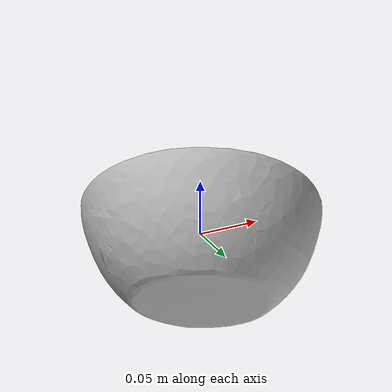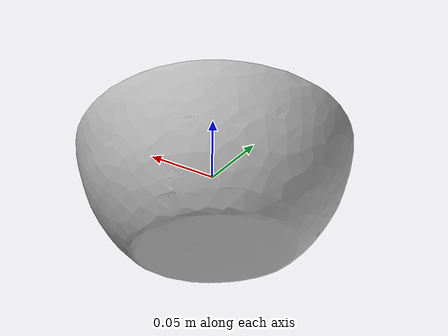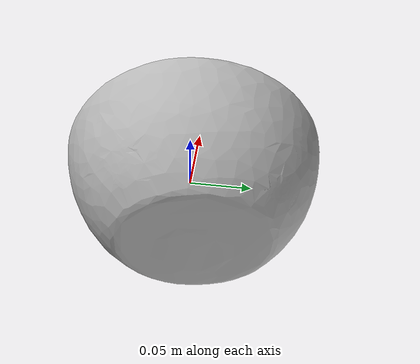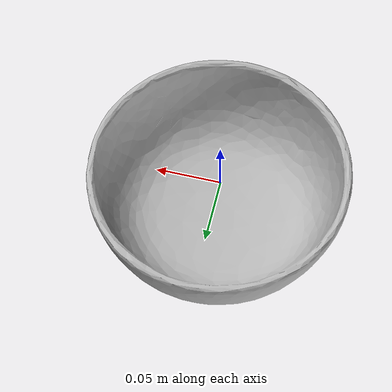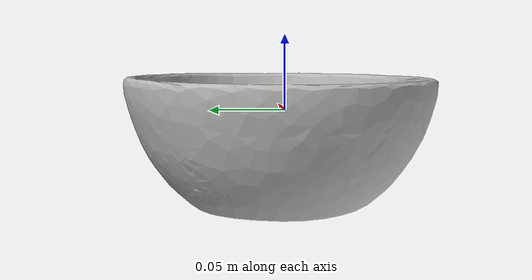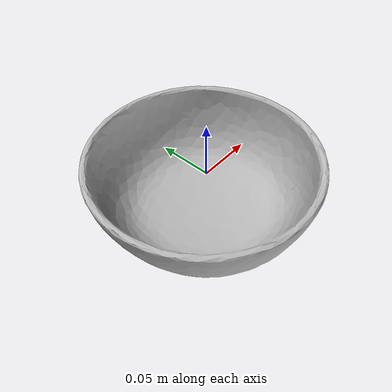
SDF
<?xml version="1.0" ?>
<sdf version="1.4">
    <model name='salad_bowl'>
      <link name='link'>
        <pose>0 0 0 0 0 0</pose>
        <inertial>
          <mass>0.3</mass>
          <inertia>
            <ixx>0.00120</ixx>
            <ixy>0</ixy>
            <ixz>0</ixz>
            <iyy>0.001191</iyy>
            <iyz>0</iyz>
            <izz>0.00203</izz>
          </inertia>
        </inertial>
        <visual name='salad_bowl'>
          <pose>0.0 0.0 0.0 0 0 0</pose>
          <geometry>
            <mesh>
              <uri>model://salad_bowl/meshes/salad_bowl.dae</uri>
            </mesh>
          </geometry>

        </visual>
        <collision name='salad_bowl'>
          <pose>0.0 0.0 0.0 0 0 0</pose>
          <geometry>
            <mesh>
              <uri>model://salad_bowl/meshes/salad_bowl.dae</uri>
            </mesh>
          </geometry>
          <max_contacts>10</max_contacts>
          <surface>
            <bounce>
              <restitution_coefficient>0.2</restitution_coefficient>
              <threshold>0</threshold>
            </bounce>
            <friction>
              <ode/>
            </friction>
            <contact>
              <ode/>
            </contact>
          </surface>
        </collision>
        <velocity_decay>
          <linear>0</linear>
          <angular>0</angular>
        </velocity_decay>
        <self_collide>0</self_collide>
        <kinematic>0</kinematic>
        <gravity>1</gravity>
      </link>
      <static>0</static>
    </model>
</sdf>
